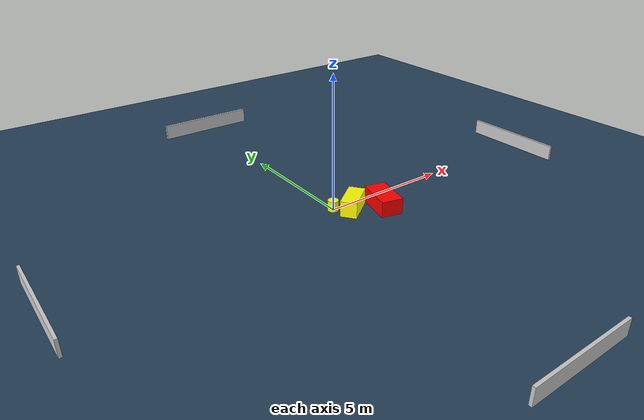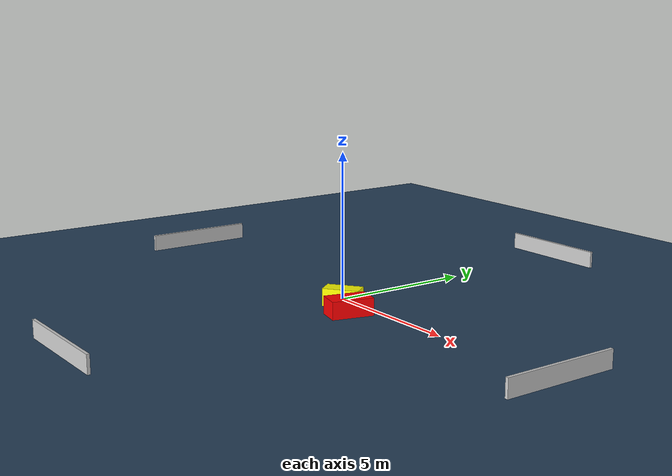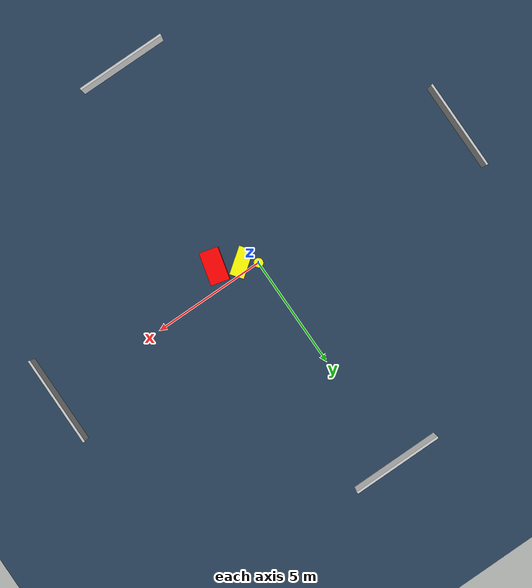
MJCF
<?xml version="1.0" ?>
<mujoco model="generated_environment">
  <option timestep="0.01" integrator="RK4" cone="elliptic"/>
  <default>
    <geom density="1"/>
  </default>
  <asset>
    <texture builtin="gradient" height="3072" name="skybox" rgb1="0.3 0.5 0.7" rgb2="0 0 0" type="skybox" width="512"/>
    <texture builtin="checker" height="300" name="groundplane" rgb1="0.2 0.3 0.4" rgb2="0.1 0.2 0.3" type="2d" width="300"/>
    <material name="groundplane" reflectance="0.2" texrepeat="5 5" texture="groundplane"/>
  </asset>
  <worldbody>
    <light dir="0 0 -1" directional="true" pos="0 0 1.5"/>
    <geom condim="3" friction="0.5 0.005 0.001" material="groundplane" name="floor" pos="0 0 0" size="0 0 0.05" type="plane"/>
    <body name="walls">
      <geom name="wall_1" condim="4" pos="-10.0 0.0 0.3" rgba="0.800000011920929 0.800000011920929 0.800000011920929 1.0" size="0.05 2.0 0.3" type="box"/>
      <geom name="wall_2" condim="4" pos="10.0 0.0 0.3" rgba="0.800000011920929 0.800000011920929 0.800000011920929 1.0" size="0.05 2.0 0.3" type="box"/>
      <geom name="wall_3" condim="4" pos="0.0 -10.0 0.3" rgba="0.800000011920929 0.800000011920929 0.800000011920929 1.0" size="2.0 0.05 0.3" type="box"/>
      <geom name="wall_4" condim="4" pos="0.0 10.0 0.3" rgba="0.800000011920929 0.800000011920929 0.800000011920929 1.0" size="2.0 0.05 0.3" type="box"/>
    </body>
    <body name="robot">
      <joint name="joint_x" type="slide" pos="0 0 0" axis="1 0 0"/>
      <joint name="joint_y" type="slide" pos="0 0 0" axis="0 1 0"/>
      <geom name="robot" type="cylinder" pos="0.0 0.0 0.2" size="0.2 0.2 0.0" mass="5.0" friction="1.0 0.005 0.0001" condim="4" rgba="1.0 1.0 0.0 1.0"/>
    </body>
    <body name="obstacle_1_movable">
      <geom name="obstacle_1_movable" condim="4" pos="0.5704545105960654 -0.40861722304941406 0.3" euler="0 0 216.81607059189415" friction="0.0 0.005 0.001" rgba="1.0 1.0 0.0 1.0" size="0.6213918207202987 0.3058080517285681 0.3" type="box" mass="0.1"/>
      <joint type="free"/>
    </body>
    <body name="obstacle_2_static">
      <geom name="obstacle_2_static" condim="4" pos="1.5787468718042335 -0.9054058134052844 0.3" euler="0 0 346.0764141783796" friction="0.0 0.005 0.001" rgba="1.0 0.0 0.0 1.0" size="0.409411129383312 0.7108550056411493 0.3" type="box"/>
    </body>
  </worldbody>
  <actuator>
    <motor name="actuator_x" joint="joint_x" gear="1" ctrlrange="-1 1"/>
    <motor name="actuator_y" joint="joint_y" gear="1" ctrlrange="-1 1"/>
  </actuator>
</mujoco>
